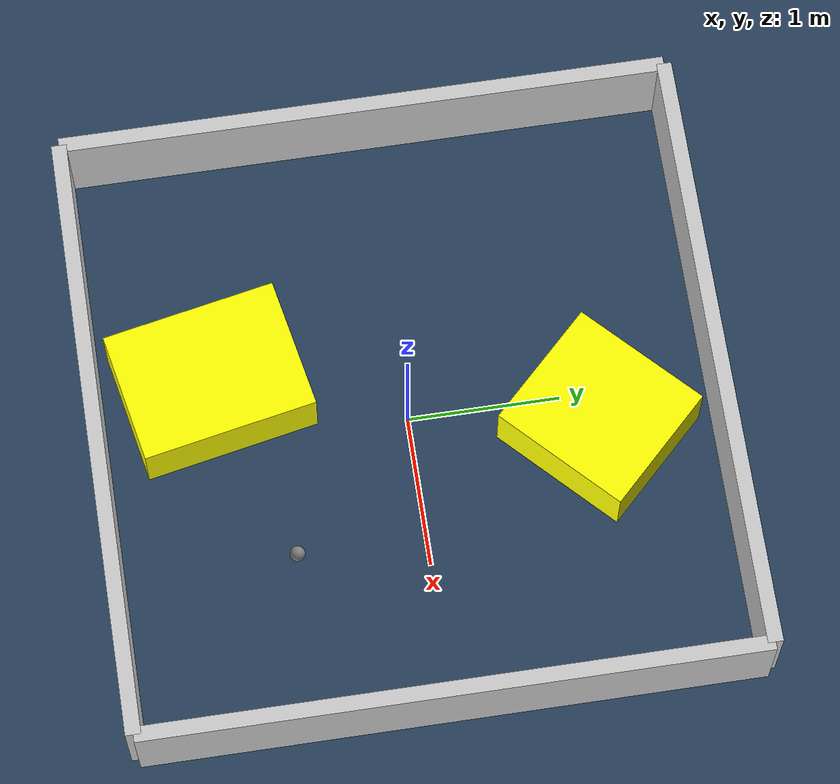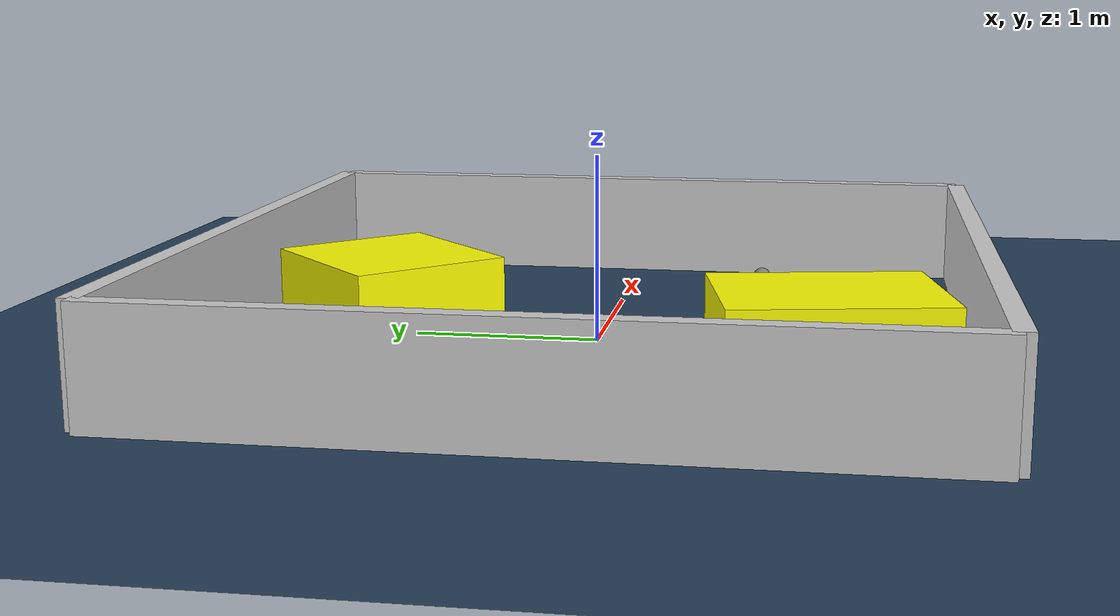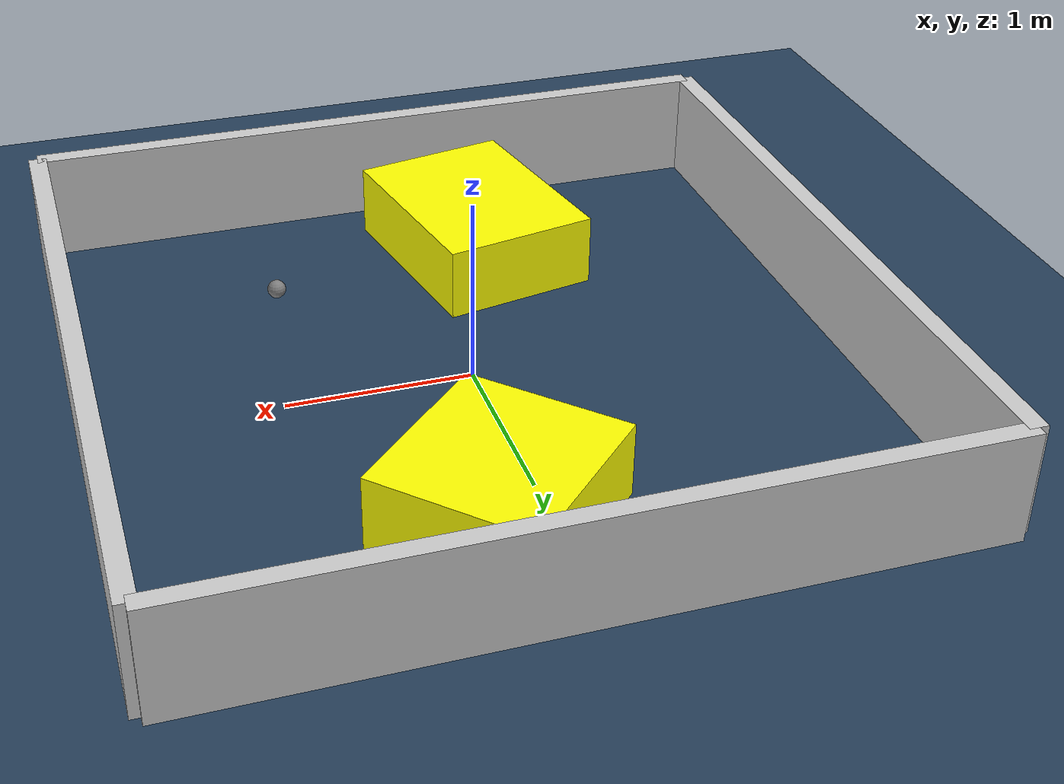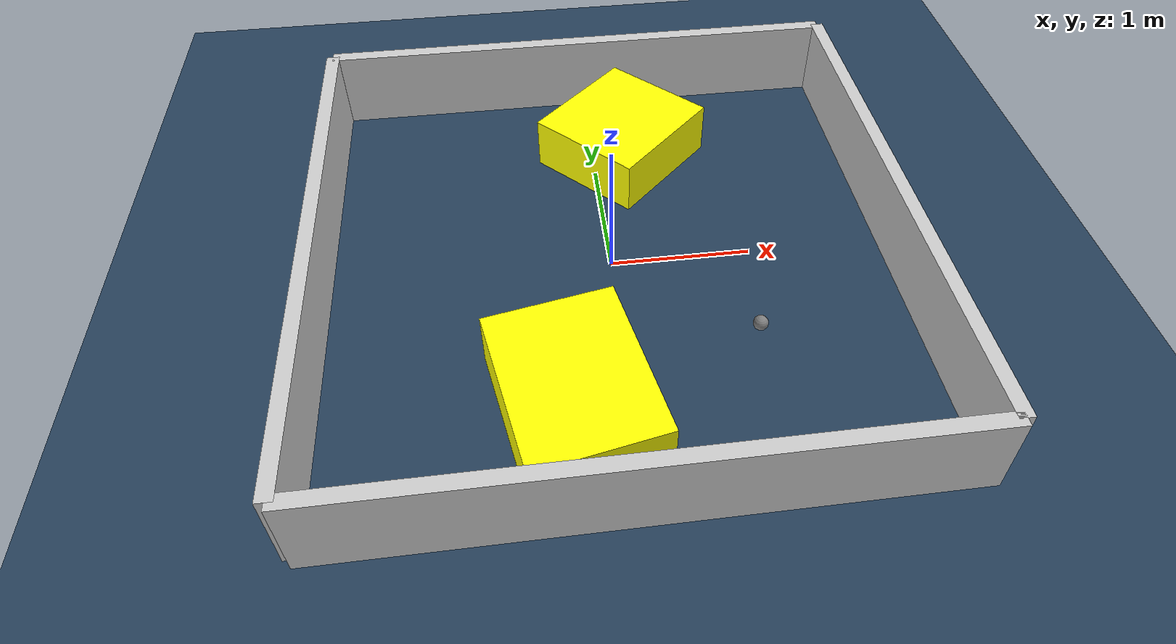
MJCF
<?xml version="1.0" ?>
<mujoco model="generated_environment">
  <option timestep="0.01" integrator="RK4" cone="elliptic"/>
  <default>
    <geom density="1"/>
  </default>
  <asset>
    <texture builtin="gradient" height="3072" rgb1="0.3 0.5 0.7" rgb2="0 0 0" type="skybox" width="512"/>
    <texture builtin="checker" height="300" mark="edge" markrgb="0.8 0.8 0.8" name="groundplane" rgb1="0.2 0.3 0.4" rgb2="0.1 0.2 0.3" type="2d" width="300"/>
    <material name="groundplane" reflectance="0.2" texrepeat="5 5" texture="groundplane" texuniform="true"/>
    <material name="robot" rgba="0.0 1.0 0.0 1"/>
  </asset>
  <worldbody>
    <light dir="0 0 -1" directional="true" pos="0 0 1.5"/>
    <geom condim="4" friction="1.0 0.005 0.001" material="groundplane" name="floor" size="0 0 0.05" type="plane"/>
    <body name="walls">
      <geom name="wall_1" condim="4" pos="-2.0 0.0 0.3" rgba="0.800000011920929 0.800000011920929 0.800000011920929 1.0" size="0.05 2.0 0.3" type="box"/>
      <geom name="wall_2" condim="4" pos="2.0 0.0 0.3" rgba="0.800000011920929 0.800000011920929 0.800000011920929 1.0" size="0.05 2.0 0.3" type="box"/>
      <geom name="wall_3" condim="4" pos="0.0 -2.0 0.3" rgba="0.800000011920929 0.800000011920929 0.800000011920929 1.0" size="2.0 0.05 0.3" type="box"/>
      <geom name="wall_4" condim="4" pos="0.0 2.0 0.3" rgba="0.800000011920929 0.800000011920929 0.800000011920929 1.0" size="2.0 0.05 0.3" type="box"/>
    </body>
    <body name="robot">
      <joint name="joint_x" type="slide" pos="0 0 0" axis="1 0 0"/>
      <joint name="joint_y" type="slide" pos="0 0 0" axis="0 1 0"/>
      <geom name="robot" type="sphere" pos="0.8656613142446816 -0.8376027609023019 0.2" size="0.05" mass="5." friction="1.0 0.005 0.0001" condim="4"/>
      <site name="sensor_ball"/>
    </body>
    <body name="obstacle_1_movable">
      <geom name="obstacle_1_movable" condim="4" pos="0.23574469490882044 1.2119542319400662 0.2" euler="0 0 134.25627311852185" friction="1.0 0.005 0.001" rgba="1 1 0 1" size="0.4492988077469654 0.4815510350129922 0.2" type="box" mass="0.1"/>
      <joint type="free"/>
    </body>
    <body name="obstacle_2_movable">
      <geom name="obstacle_2_movable" condim="4" pos="-0.37944266868829346 -1.2314120924614729 0.2" euler="0 0 281.07930061597335" friction="1.0 0.005 0.001" rgba="1 1 0 1" size="0.5758871020629632 0.43748929061499475 0.2" type="box" mass="0.1"/>
      <joint type="free"/>
    </body>
  </worldbody>
  <actuator>
    <motor name="actuator_x" joint="joint_x" gear="1" ctrlrange="-1 1"/>
    <motor name="actuator_y" joint="joint_y" gear="1" ctrlrange="-1 1"/>
  </actuator>
</mujoco>
